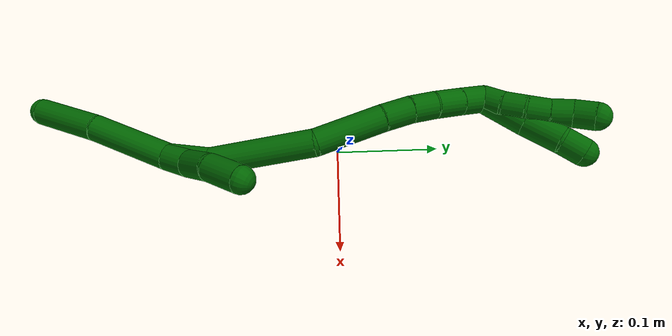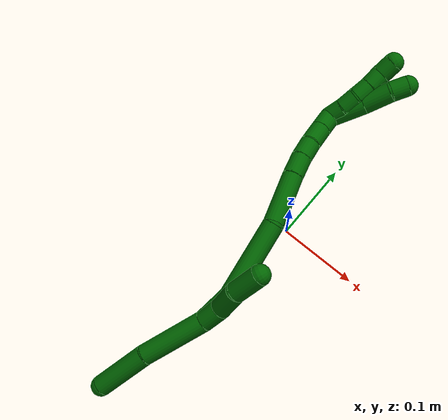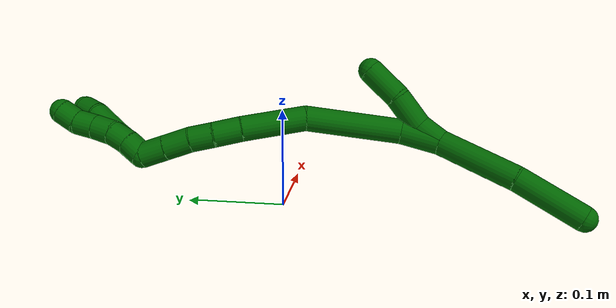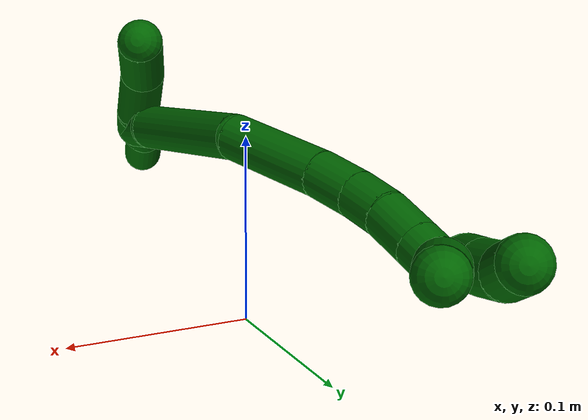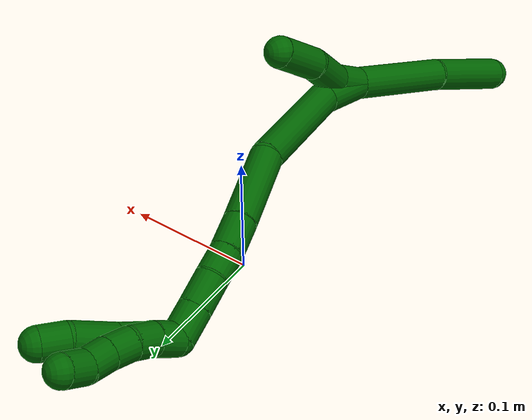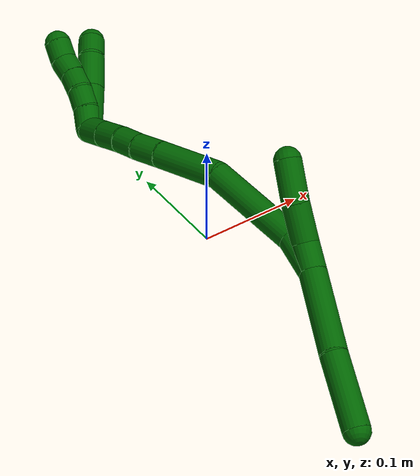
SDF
<sdf version="1.7">
 <world name="default">
  <model name="6">
   <static>0</static>
   <link name="6">
    <collision name="collision-cylinder-e_1_2_8">
     <pose>0.002175 0.000346 -0.040347 -3.13301 0.053845 -2.82548</pose>
     <geometry><cylinder><radius>0.0125</radius><length>0.080815</length></cylinder></geometry>
     <surface>
      <friction><ode><mu>1.16</mu><mu2>1.16</mu2><slip1>0</slip1><slip2>0</slip2></ode></friction>
      <contact><ode><kp>1e+06</kp><kd>1</kd><max_vel>0</max_vel><min_depth>0.001</min_depth></ode></contact>
     </surface>
    </collision>
    <visual name="visual-cylinder-e_1_2_8">
     <pose>0.002175 0.000346 -0.040347 -3.13301 0.053845 -2.82548</pose>
     <geometry><cylinder><radius>0.0125</radius><length>0.080815</length></cylinder></geometry>
     <material><ambient>0 0.392157 0.003922 1</ambient></material>
    </visual>
    <collision name="collision-cylinder-e_2_8_6">
     <pose>0.009644 0.004811 -0.114631 -3.02082 0.153674 -1.8102</pose>
     <geometry><cylinder><radius>0.0125</radius><length>0.069185</length></cylinder></geometry>
     <surface>
      <friction><ode><mu>1.16</mu><mu2>1.16</mu2><slip1>0</slip1><slip2>0</slip2></ode></friction>
      <contact><ode><kp>1e+06</kp><kd>1</kd><max_vel>0</max_vel><min_depth>0.001</min_depth></ode></contact>
     </surface>
    </collision>
    <visual name="visual-cylinder-e_2_8_6">
     <pose>0.009644 0.004811 -0.114631 -3.02082 0.153674 -1.8102</pose>
     <geometry><cylinder><radius>0.0125</radius><length>0.069185</length></cylinder></geometry>
     <material><ambient>0 0.392157 0.003922 1</ambient></material>
    </visual>
    <collision name="collision-cylinder-e_1_2_9">
     <pose>-0.002316 -0.003118 0.012617 0.242301 -0.176376 -0.021528</pose>
     <geometry><cylinder><radius>0.0125</radius><length>0.026403</length></cylinder></geometry>
     <surface>
      <friction><ode><mu>1.16</mu><mu2>1.16</mu2><slip1>0</slip1><slip2>0</slip2></ode></friction>
      <contact><ode><kp>1e+06</kp><kd>1</kd><max_vel>0</max_vel><min_depth>0.001</min_depth></ode></contact>
     </surface>
    </collision>
    <visual name="visual-cylinder-e_1_2_9">
     <pose>-0.002316 -0.003118 0.012617 0.242301 -0.176376 -0.021528</pose>
     <geometry><cylinder><radius>0.0125</radius><length>0.026403</length></cylinder></geometry>
     <material><ambient>0 0.392157 0.003922 1</ambient></material>
    </visual>
    <collision name="collision-cylinder-e_2_9_10">
     <pose>-0.009784 -0.015502 0.039486 0.576452 -0.294215 -0.087808</pose>
     <geometry><cylinder><radius>0.0125</radius><length>0.035524</length></cylinder></geometry>
     <surface>
      <friction><ode><mu>1.16</mu><mu2>1.16</mu2><slip1>0</slip1><slip2>0</slip2></ode></friction>
      <contact><ode><kp>1e+06</kp><kd>1</kd><max_vel>0</max_vel><min_depth>0.001</min_depth></ode></contact>
     </surface>
    </collision>
    <visual name="visual-cylinder-e_2_9_10">
     <pose>-0.009784 -0.015502 0.039486 0.576452 -0.294215 -0.087808</pose>
     <geometry><cylinder><radius>0.0125</radius><length>0.035524</length></cylinder></geometry>
     <material><ambient>0 0.392157 0.003922 1</ambient></material>
    </visual>
    <collision name="collision-cylinder-e_3_10_5">
     <pose>-0.017806 -0.031543 0.071295 0.368311 -0.15141 -0.028255</pose>
     <geometry><cylinder><radius>0.0125</radius><length>0.038072</length></cylinder></geometry>
     <surface>
      <friction><ode><mu>1.16</mu><mu2>1.16</mu2><slip1>0</slip1><slip2>0</slip2></ode></friction>
      <contact><ode><kp>1e+06</kp><kd>1</kd><max_vel>0</max_vel><min_depth>0.001</min_depth></ode></contact>
     </surface>
    </collision>
    <visual name="visual-cylinder-e_3_10_5">
     <pose>-0.017806 -0.031543 0.071295 0.368311 -0.15141 -0.028255</pose>
     <geometry><cylinder><radius>0.0125</radius><length>0.038072</length></cylinder></geometry>
     <material><ambient>0 0.392157 0.003922 1</ambient></material>
    </visual>
    <collision name="collision-cylinder-e_1_2_11">
     <pose>-0.005524 0.00263 0.019118 -0.136707 -0.278782 0.01921</pose>
     <geometry><cylinder><radius>0.0125</radius><length>0.040146</length></cylinder></geometry>
     <surface>
      <friction><ode><mu>1.16</mu><mu2>1.16</mu2><slip1>0</slip1><slip2>0</slip2></ode></friction>
      <contact><ode><kp>1e+06</kp><kd>1</kd><max_vel>0</max_vel><min_depth>0.001</min_depth></ode></contact>
     </surface>
    </collision>
    <visual name="visual-cylinder-e_1_2_11">
     <pose>-0.005524 0.00263 0.019118 -0.136707 -0.278782 0.01921</pose>
     <geometry><cylinder><radius>0.0125</radius><length>0.040146</length></cylinder></geometry>
     <material><ambient>0 0.392157 0.003922 1</ambient></material>
    </visual>
    <collision name="collision-cylinder-e_2_11_12">
     <pose>-0.035375 0.01606 0.077716 -0.267028 -0.536257 0.07377</pose>
     <geometry><cylinder><radius>0.0125</radius><length>0.095229</length></cylinder></geometry>
     <surface>
      <friction><ode><mu>1.16</mu><mu2>1.16</mu2><slip1>0</slip1><slip2>0</slip2></ode></friction>
      <contact><ode><kp>1e+06</kp><kd>1</kd><max_vel>0</max_vel><min_depth>0.001</min_depth></ode></contact>
     </surface>
    </collision>
    <visual name="visual-cylinder-e_2_11_12">
     <pose>-0.035375 0.01606 0.077716 -0.267028 -0.536257 0.07377</pose>
     <geometry><cylinder><radius>0.0125</radius><length>0.095229</length></cylinder></geometry>
     <material><ambient>0 0.392157 0.003922 1</ambient></material>
    </visual>
    <collision name="collision-cylinder-e_3_12_13">
     <pose>-0.078757 0.042089 0.137957 -0.632883 -0.637117 0.215142</pose>
     <geometry><cylinder><radius>0.0125</radius><length>0.064063</length></cylinder></geometry>
     <surface>
      <friction><ode><mu>1.16</mu><mu2>1.16</mu2><slip1>0</slip1><slip2>0</slip2></ode></friction>
      <contact><ode><kp>1e+06</kp><kd>1</kd><max_vel>0</max_vel><min_depth>0.001</min_depth></ode></contact>
     </surface>
    </collision>
    <visual name="visual-cylinder-e_3_12_13">
     <pose>-0.078757 0.042089 0.137957 -0.632883 -0.637117 0.215142</pose>
     <geometry><cylinder><radius>0.0125</radius><length>0.064063</length></cylinder></geometry>
     <material><ambient>0 0.392157 0.003922 1</ambient></material>
    </visual>
    <collision name="collision-cylinder-e_4_13_14">
     <pose>-0.105112 0.064464 0.167601 -0.677432 -0.569512 0.205513</pose>
     <geometry><cylinder><radius>0.0125</radius><length>0.027077</length></cylinder></geometry>
     <surface>
      <friction><ode><mu>1.16</mu><mu2>1.16</mu2><slip1>0</slip1><slip2>0</slip2></ode></friction>
      <contact><ode><kp>1e+06</kp><kd>1</kd><max_vel>0</max_vel><min_depth>0.001</min_depth></ode></contact>
     </surface>
    </collision>
    <visual name="visual-cylinder-e_4_13_14">
     <pose>-0.105112 0.064464 0.167601 -0.677432 -0.569512 0.205513</pose>
     <geometry><cylinder><radius>0.0125</radius><length>0.027077</length></cylinder></geometry>
     <material><ambient>0 0.392157 0.003922 1</ambient></material>
    </visual>
    <collision name="collision-cylinder-e_5_14_15">
     <pose>-0.11764 0.077806 0.184688 -0.646839 -0.470533 0.160349</pose>
     <geometry><cylinder><radius>0.0125</radius><length>0.023065</length></cylinder></geometry>
     <surface>
      <friction><ode><mu>1.16</mu><mu2>1.16</mu2><slip1>0</slip1><slip2>0</slip2></ode></friction>
      <contact><ode><kp>1e+06</kp><kd>1</kd><max_vel>0</max_vel><min_depth>0.001</min_depth></ode></contact>
     </surface>
    </collision>
    <visual name="visual-cylinder-e_5_14_15">
     <pose>-0.11764 0.077806 0.184688 -0.646839 -0.470533 0.160349</pose>
     <geometry><cylinder><radius>0.0125</radius><length>0.023065</length></cylinder></geometry>
     <material><ambient>0 0.392157 0.003922 1</ambient></material>
    </visual>
    <collision name="collision-cylinder-e_6_15_16">
     <pose>-0.127705 0.092254 0.201602 -0.758366 -0.383093 0.154238</pose>
     <geometry><cylinder><radius>0.0125</radius><length>0.025877</length></cylinder></geometry>
     <surface>
      <friction><ode><mu>1.16</mu><mu2>1.16</mu2><slip1>0</slip1><slip2>0</slip2></ode></friction>
      <contact><ode><kp>1e+06</kp><kd>1</kd><max_vel>0</max_vel><min_depth>0.001</min_depth></ode></contact>
     </surface>
    </collision>
    <visual name="visual-cylinder-e_6_15_16">
     <pose>-0.127705 0.092254 0.201602 -0.758366 -0.383093 0.154238</pose>
     <geometry><cylinder><radius>0.0125</radius><length>0.025877</length></cylinder></geometry>
     <material><ambient>0 0.392157 0.003922 1</ambient></material>
    </visual>
    <collision name="collision-cylinder-e_7_16_1">
     <pose>-0.136995 0.108348 0.218637 -0.755622 -0.37144 0.148859</pose>
     <geometry><cylinder><radius>0.0125</radius><length>0.024544</length></cylinder></geometry>
     <surface>
      <friction><ode><mu>1.16</mu><mu2>1.16</mu2><slip1>0</slip1><slip2>0</slip2></ode></friction>
      <contact><ode><kp>1e+06</kp><kd>1</kd><max_vel>0</max_vel><min_depth>0.001</min_depth></ode></contact>
     </surface>
    </collision>
    <visual name="visual-cylinder-e_7_16_1">
     <pose>-0.136995 0.108348 0.218637 -0.755622 -0.37144 0.148859</pose>
     <geometry><cylinder><radius>0.0125</radius><length>0.024544</length></cylinder></geometry>
     <material><ambient>0 0.392157 0.003922 1</ambient></material>
    </visual>
    <collision name="collision-cylinder-e_1_1_17">
     <pose>-0.1422 0.11394 0.236675 0.227645 -0.075088 -0.008588</pose>
     <geometry><cylinder><radius>0.0125</radius><length>0.02</length></cylinder></geometry>
     <surface>
      <friction><ode><mu>1.16</mu><mu2>1.16</mu2><slip1>0</slip1><slip2>0</slip2></ode></friction>
      <contact><ode><kp>1e+06</kp><kd>1</kd><max_vel>0</max_vel><min_depth>0.001</min_depth></ode></contact>
     </surface>
    </collision>
    <visual name="visual-cylinder-e_1_1_17">
     <pose>-0.1422 0.11394 0.236675 0.227645 -0.075088 -0.008588</pose>
     <geometry><cylinder><radius>0.0125</radius><length>0.02</length></cylinder></geometry>
     <material><ambient>0 0.392157 0.003922 1</ambient></material>
    </visual>
    <collision name="collision-cylinder-e_2_17_18">
     <pose>-0.144908 0.110764 0.256152 0.094519 -0.197089 -0.009352</pose>
     <geometry><cylinder><radius>0.0125</radius><length>0.02</length></cylinder></geometry>
     <surface>
      <friction><ode><mu>1.16</mu><mu2>1.16</mu2><slip1>0</slip1><slip2>0</slip2></ode></friction>
      <contact><ode><kp>1e+06</kp><kd>1</kd><max_vel>0</max_vel><min_depth>0.001</min_depth></ode></contact>
     </surface>
    </collision>
    <visual name="visual-cylinder-e_2_17_18">
     <pose>-0.144908 0.110764 0.256152 0.094519 -0.197089 -0.009352</pose>
     <geometry><cylinder><radius>0.0125</radius><length>0.02</length></cylinder></geometry>
     <material><ambient>0 0.392157 0.003922 1</ambient></material>
    </visual>
    <collision name="collision-cylinder-e_3_18_19">
     <pose>-0.148884 0.111019 0.275638 -0.120903 -0.203173 0.012339</pose>
     <geometry><cylinder><radius>0.0125</radius><length>0.02</length></cylinder></geometry>
     <surface>
      <friction><ode><mu>1.16</mu><mu2>1.16</mu2><slip1>0</slip1><slip2>0</slip2></ode></friction>
      <contact><ode><kp>1e+06</kp><kd>1</kd><max_vel>0</max_vel><min_depth>0.001</min_depth></ode></contact>
     </surface>
    </collision>
    <visual name="visual-cylinder-e_3_18_19">
     <pose>-0.148884 0.111019 0.275638 -0.120903 -0.203173 0.012339</pose>
     <geometry><cylinder><radius>0.0125</radius><length>0.02</length></cylinder></geometry>
     <material><ambient>0 0.392157 0.003922 1</ambient></material>
    </visual>
    <collision name="collision-cylinder-e_4_19_20">
     <pose>-0.154155 0.113593 0.294713 -0.147814 -0.331343 0.024759</pose>
     <geometry><cylinder><radius>0.0125</radius><length>0.02</length></cylinder></geometry>
     <surface>
      <friction><ode><mu>1.16</mu><mu2>1.16</mu2><slip1>0</slip1><slip2>0</slip2></ode></friction>
      <contact><ode><kp>1e+06</kp><kd>1</kd><max_vel>0</max_vel><min_depth>0.001</min_depth></ode></contact>
     </surface>
    </collision>
    <visual name="visual-cylinder-e_4_19_20">
     <pose>-0.154155 0.113593 0.294713 -0.147814 -0.331343 0.024759</pose>
     <geometry><cylinder><radius>0.0125</radius><length>0.02</length></cylinder></geometry>
     <material><ambient>0 0.392157 0.003922 1</ambient></material>
    </visual>
    <collision name="collision-cylinder-e_5_20_4">
     <pose>-0.159817 0.113473 0.313653 0.156468 -0.24326 -0.019164</pose>
     <geometry><cylinder><radius>0.0125</radius><length>0.02</length></cylinder></geometry>
     <surface>
      <friction><ode><mu>1.16</mu><mu2>1.16</mu2><slip1>0</slip1><slip2>0</slip2></ode></friction>
      <contact><ode><kp>1e+06</kp><kd>1</kd><max_vel>0</max_vel><min_depth>0.001</min_depth></ode></contact>
     </surface>
    </collision>
    <visual name="visual-cylinder-e_5_20_4">
     <pose>-0.159817 0.113473 0.313653 0.156468 -0.24326 -0.019164</pose>
     <geometry><cylinder><radius>0.0125</radius><length>0.02</length></cylinder></geometry>
     <material><ambient>0 0.392157 0.003922 1</ambient></material>
    </visual>
    <collision name="collision-cylinder-e_1_1_21">
     <pose>-0.138482 0.114323 0.248797 0.085274 0.134582 0.00575</pose>
     <geometry><cylinder><radius>0.0125</radius><length>0.044232</length></cylinder></geometry>
     <surface>
      <friction><ode><mu>1.16</mu><mu2>1.16</mu2><slip1>0</slip1><slip2>0</slip2></ode></friction>
      <contact><ode><kp>1e+06</kp><kd>1</kd><max_vel>0</max_vel><min_depth>0.001</min_depth></ode></contact>
     </surface>
    </collision>
    <visual name="visual-cylinder-e_1_1_21">
     <pose>-0.138482 0.114323 0.248797 0.085274 0.134582 0.00575</pose>
     <geometry><cylinder><radius>0.0125</radius><length>0.044232</length></cylinder></geometry>
     <material><ambient>0 0.392157 0.003922 1</ambient></material>
    </visual>
    <collision name="collision-cylinder-e_2_21_22">
     <pose>-0.134174 0.109543 0.28773 0.168791 0.077143 0.006529</pose>
     <geometry><cylinder><radius>0.0125</radius><length>0.034789</length></cylinder></geometry>
     <surface>
      <friction><ode><mu>1.16</mu><mu2>1.16</mu2><slip1>0</slip1><slip2>0</slip2></ode></friction>
      <contact><ode><kp>1e+06</kp><kd>1</kd><max_vel>0</max_vel><min_depth>0.001</min_depth></ode></contact>
     </surface>
    </collision>
    <visual name="visual-cylinder-e_2_21_22">
     <pose>-0.134174 0.109543 0.28773 0.168791 0.077143 0.006529</pose>
     <geometry><cylinder><radius>0.0125</radius><length>0.034789</length></cylinder></geometry>
     <material><ambient>0 0.392157 0.003922 1</ambient></material>
    </visual>
    <collision name="collision-cylinder-e_3_22_3">
     <pose>-0.131278 0.107423 0.315169 -0.076543 0.148845 -0.00571</pose>
     <geometry><cylinder><radius>0.0125</radius><length>0.020979</length></cylinder></geometry>
     <surface>
      <friction><ode><mu>1.16</mu><mu2>1.16</mu2><slip1>0</slip1><slip2>0</slip2></ode></friction>
      <contact><ode><kp>1e+06</kp><kd>1</kd><max_vel>0</max_vel><min_depth>0.001</min_depth></ode></contact>
     </surface>
    </collision>
    <visual name="visual-cylinder-e_3_22_3">
     <pose>-0.131278 0.107423 0.315169 -0.076543 0.148845 -0.00571</pose>
     <geometry><cylinder><radius>0.0125</radius><length>0.020979</length></cylinder></geometry>
     <material><ambient>0 0.392157 0.003922 1</ambient></material>
    </visual>
    <collision name="collision-sphere-3">
     <pose>-0.129723 0.108216 0.325512 0 -0 0</pose>
     <geometry><sphere><radius>0.0125</radius></sphere></geometry>
     <surface>
      <friction><ode><mu>1.16</mu><mu2>1.16</mu2><slip1>0</slip1><slip2>0</slip2></ode></friction>
      <contact><ode><kp>1e+06</kp><kd>1</kd><max_vel>0</max_vel><min_depth>0.001</min_depth></ode></contact>
     </surface>
    </collision>
    <visual name="visual-sphere-3">
     <pose>-0.129723 0.108216 0.325512 0 -0 0</pose>
     <geometry><sphere><radius>0.0125</radius></sphere></geometry>
     <material><ambient>0 0.392157 0.003922 1</ambient></material>
    </visual>
    <collision name="collision-sphere-22">
     <pose>-0.132834 0.10663 0.304826 0 -0 0</pose>
     <geometry><sphere><radius>0.0125</radius></sphere></geometry>
     <surface>
      <friction><ode><mu>1.16</mu><mu2>1.16</mu2><slip1>0</slip1><slip2>0</slip2></ode></friction>
      <contact><ode><kp>1e+06</kp><kd>1</kd><max_vel>0</max_vel><min_depth>0.001</min_depth></ode></contact>
     </surface>
    </collision>
    <visual name="visual-sphere-22">
     <pose>-0.132834 0.10663 0.304826 0 -0 0</pose>
     <geometry><sphere><radius>0.0125</radius></sphere></geometry>
     <material><ambient>0 0.392157 0.003922 1</ambient></material>
    </visual>
    <collision name="collision-sphere-21">
     <pose>-0.135515 0.112457 0.270634 0 -0 0</pose>
     <geometry><sphere><radius>0.0125</radius></sphere></geometry>
     <surface>
      <friction><ode><mu>1.16</mu><mu2>1.16</mu2><slip1>0</slip1><slip2>0</slip2></ode></friction>
      <contact><ode><kp>1e+06</kp><kd>1</kd><max_vel>0</max_vel><min_depth>0.001</min_depth></ode></contact>
     </surface>
    </collision>
    <visual name="visual-sphere-21">
     <pose>-0.135515 0.112457 0.270634 0 -0 0</pose>
     <geometry><sphere><radius>0.0125</radius></sphere></geometry>
     <material><ambient>0 0.392157 0.003922 1</ambient></material>
    </visual>
    <collision name="collision-sphere-4">
     <pose>-0.162226 0.111961 0.32324 0 -0 0</pose>
     <geometry><sphere><radius>0.0125</radius></sphere></geometry>
     <surface>
      <friction><ode><mu>1.16</mu><mu2>1.16</mu2><slip1>0</slip1><slip2>0</slip2></ode></friction>
      <contact><ode><kp>1e+06</kp><kd>1</kd><max_vel>0</max_vel><min_depth>0.001</min_depth></ode></contact>
     </surface>
    </collision>
    <visual name="visual-sphere-4">
     <pose>-0.162226 0.111961 0.32324 0 -0 0</pose>
     <geometry><sphere><radius>0.0125</radius></sphere></geometry>
     <material><ambient>0 0.392157 0.003922 1</ambient></material>
    </visual>
    <collision name="collision-sphere-20">
     <pose>-0.157408 0.114986 0.304066 0 -0 0</pose>
     <geometry><sphere><radius>0.0125</radius></sphere></geometry>
     <surface>
      <friction><ode><mu>1.16</mu><mu2>1.16</mu2><slip1>0</slip1><slip2>0</slip2></ode></friction>
      <contact><ode><kp>1e+06</kp><kd>1</kd><max_vel>0</max_vel><min_depth>0.001</min_depth></ode></contact>
     </surface>
    </collision>
    <visual name="visual-sphere-20">
     <pose>-0.157408 0.114986 0.304066 0 -0 0</pose>
     <geometry><sphere><radius>0.0125</radius></sphere></geometry>
     <material><ambient>0 0.392157 0.003922 1</ambient></material>
    </visual>
    <collision name="collision-sphere-5">
     <pose>-0.020677 -0.038318 0.088851 0 -0 0</pose>
     <geometry><sphere><radius>0.0125</radius></sphere></geometry>
     <surface>
      <friction><ode><mu>1.16</mu><mu2>1.16</mu2><slip1>0</slip1><slip2>0</slip2></ode></friction>
      <contact><ode><kp>1e+06</kp><kd>1</kd><max_vel>0</max_vel><min_depth>0.001</min_depth></ode></contact>
     </surface>
    </collision>
    <visual name="visual-sphere-5">
     <pose>-0.020677 -0.038318 0.088851 0 -0 0</pose>
     <geometry><sphere><radius>0.0125</radius></sphere></geometry>
     <material><ambient>0 0.392157 0.003922 1</ambient></material>
    </visual>
    <collision name="collision-sphere-10">
     <pose>-0.014934 -0.024767 0.053738 0 -0 0</pose>
     <geometry><sphere><radius>0.0125</radius></sphere></geometry>
     <surface>
      <friction><ode><mu>1.16</mu><mu2>1.16</mu2><slip1>0</slip1><slip2>0</slip2></ode></friction>
      <contact><ode><kp>1e+06</kp><kd>1</kd><max_vel>0</max_vel><min_depth>0.001</min_depth></ode></contact>
     </surface>
    </collision>
    <visual name="visual-sphere-10">
     <pose>-0.014934 -0.024767 0.053738 0 -0 0</pose>
     <geometry><sphere><radius>0.0125</radius></sphere></geometry>
     <material><ambient>0 0.392157 0.003922 1</ambient></material>
    </visual>
    <collision name="collision-sphere-6">
     <pose>0.01494 0.00893 -0.148567 0 -0 0</pose>
     <geometry><sphere><radius>0.0125</radius></sphere></geometry>
     <surface>
      <friction><ode><mu>1.16</mu><mu2>1.16</mu2><slip1>0</slip1><slip2>0</slip2></ode></friction>
      <contact><ode><kp>1e+06</kp><kd>1</kd><max_vel>0</max_vel><min_depth>0.001</min_depth></ode></contact>
     </surface>
    </collision>
    <visual name="visual-sphere-6">
     <pose>0.01494 0.00893 -0.148567 0 -0 0</pose>
     <geometry><sphere><radius>0.0125</radius></sphere></geometry>
     <material><ambient>0 0.392157 0.003922 1</ambient></material>
    </visual>
    <collision name="collision-sphere-9">
     <pose>-0.004633 -0.006237 0.025234 0 -0 0</pose>
     <geometry><sphere><radius>0.0125</radius></sphere></geometry>
     <surface>
      <friction><ode><mu>1.16</mu><mu2>1.16</mu2><slip1>0</slip1><slip2>0</slip2></ode></friction>
      <contact><ode><kp>1e+06</kp><kd>1</kd><max_vel>0</max_vel><min_depth>0.001</min_depth></ode></contact>
     </surface>
    </collision>
    <visual name="visual-sphere-9">
     <pose>-0.004633 -0.006237 0.025234 0 -0 0</pose>
     <geometry><sphere><radius>0.0125</radius></sphere></geometry>
     <material><ambient>0 0.392157 0.003922 1</ambient></material>
    </visual>
    <collision name="collision-sphere-2">
     <geometry><sphere><radius>0.0125</radius></sphere></geometry>
     <surface>
      <friction><ode><mu>1.16</mu><mu2>1.16</mu2><slip1>0</slip1><slip2>0</slip2></ode></friction>
      <contact><ode><kp>1e+06</kp><kd>1</kd><max_vel>0</max_vel><min_depth>0.001</min_depth></ode></contact>
     </surface>
    </collision>
    <visual name="visual-sphere-2">
     <geometry><sphere><radius>0.0125</radius></sphere></geometry>
     <material><ambient>0 0.392157 0.003922 1</ambient></material>
    </visual>
    <collision name="collision-sphere-19">
     <pose>-0.150902 0.112201 0.28536 0 -0 0</pose>
     <geometry><sphere><radius>0.0125</radius></sphere></geometry>
     <surface>
      <friction><ode><mu>1.16</mu><mu2>1.16</mu2><slip1>0</slip1><slip2>0</slip2></ode></friction>
      <contact><ode><kp>1e+06</kp><kd>1</kd><max_vel>0</max_vel><min_depth>0.001</min_depth></ode></contact>
     </surface>
    </collision>
    <visual name="visual-sphere-19">
     <pose>-0.150902 0.112201 0.28536 0 -0 0</pose>
     <geometry><sphere><radius>0.0125</radius></sphere></geometry>
     <material><ambient>0 0.392157 0.003922 1</ambient></material>
    </visual>
    <collision name="collision-sphere-8">
     <pose>0.004349 0.000693 -0.080695 0 -0 0</pose>
     <geometry><sphere><radius>0.0125</radius></sphere></geometry>
     <surface>
      <friction><ode><mu>1.16</mu><mu2>1.16</mu2><slip1>0</slip1><slip2>0</slip2></ode></friction>
      <contact><ode><kp>1e+06</kp><kd>1</kd><max_vel>0</max_vel><min_depth>0.001</min_depth></ode></contact>
     </surface>
    </collision>
    <visual name="visual-sphere-8">
     <pose>0.004349 0.000693 -0.080695 0 -0 0</pose>
     <geometry><sphere><radius>0.0125</radius></sphere></geometry>
     <material><ambient>0 0.392157 0.003922 1</ambient></material>
    </visual>
    <collision name="collision-sphere-11">
     <pose>-0.011048 0.00526 0.038236 0 -0 0</pose>
     <geometry><sphere><radius>0.0125</radius></sphere></geometry>
     <surface>
      <friction><ode><mu>1.16</mu><mu2>1.16</mu2><slip1>0</slip1><slip2>0</slip2></ode></friction>
      <contact><ode><kp>1e+06</kp><kd>1</kd><max_vel>0</max_vel><min_depth>0.001</min_depth></ode></contact>
     </surface>
    </collision>
    <visual name="visual-sphere-11">
     <pose>-0.011048 0.00526 0.038236 0 -0 0</pose>
     <geometry><sphere><radius>0.0125</radius></sphere></geometry>
     <material><ambient>0 0.392157 0.003922 1</ambient></material>
    </visual>
    <collision name="collision-sphere-12">
     <pose>-0.059702 0.02686 0.117196 0 -0 0</pose>
     <geometry><sphere><radius>0.0125</radius></sphere></geometry>
     <surface>
      <friction><ode><mu>1.16</mu><mu2>1.16</mu2><slip1>0</slip1><slip2>0</slip2></ode></friction>
      <contact><ode><kp>1e+06</kp><kd>1</kd><max_vel>0</max_vel><min_depth>0.001</min_depth></ode></contact>
     </surface>
    </collision>
    <visual name="visual-sphere-12">
     <pose>-0.059702 0.02686 0.117196 0 -0 0</pose>
     <geometry><sphere><radius>0.0125</radius></sphere></geometry>
     <material><ambient>0 0.392157 0.003922 1</ambient></material>
    </visual>
    <collision name="collision-sphere-13">
     <pose>-0.097812 0.057318 0.158717 0 -0 0</pose>
     <geometry><sphere><radius>0.0125</radius></sphere></geometry>
     <surface>
      <friction><ode><mu>1.16</mu><mu2>1.16</mu2><slip1>0</slip1><slip2>0</slip2></ode></friction>
      <contact><ode><kp>1e+06</kp><kd>1</kd><max_vel>0</max_vel><min_depth>0.001</min_depth></ode></contact>
     </surface>
    </collision>
    <visual name="visual-sphere-13">
     <pose>-0.097812 0.057318 0.158717 0 -0 0</pose>
     <geometry><sphere><radius>0.0125</radius></sphere></geometry>
     <material><ambient>0 0.392157 0.003922 1</ambient></material>
    </visual>
    <collision name="collision-sphere-14">
     <pose>-0.112412 0.071611 0.176485 0 -0 0</pose>
     <geometry><sphere><radius>0.0125</radius></sphere></geometry>
     <surface>
      <friction><ode><mu>1.16</mu><mu2>1.16</mu2><slip1>0</slip1><slip2>0</slip2></ode></friction>
      <contact><ode><kp>1e+06</kp><kd>1</kd><max_vel>0</max_vel><min_depth>0.001</min_depth></ode></contact>
     </surface>
    </collision>
    <visual name="visual-sphere-14">
     <pose>-0.112412 0.071611 0.176485 0 -0 0</pose>
     <geometry><sphere><radius>0.0125</radius></sphere></geometry>
     <material><ambient>0 0.392157 0.003922 1</ambient></material>
    </visual>
    <collision name="collision-sphere-15">
     <pose>-0.122869 0.084 0.19289 0 -0 0</pose>
     <geometry><sphere><radius>0.0125</radius></sphere></geometry>
     <surface>
      <friction><ode><mu>1.16</mu><mu2>1.16</mu2><slip1>0</slip1><slip2>0</slip2></ode></friction>
      <contact><ode><kp>1e+06</kp><kd>1</kd><max_vel>0</max_vel><min_depth>0.001</min_depth></ode></contact>
     </surface>
    </collision>
    <visual name="visual-sphere-15">
     <pose>-0.122869 0.084 0.19289 0 -0 0</pose>
     <geometry><sphere><radius>0.0125</radius></sphere></geometry>
     <material><ambient>0 0.392157 0.003922 1</ambient></material>
    </visual>
    <collision name="collision-sphere-16">
     <pose>-0.132541 0.100507 0.210314 0 -0 0</pose>
     <geometry><sphere><radius>0.0125</radius></sphere></geometry>
     <surface>
      <friction><ode><mu>1.16</mu><mu2>1.16</mu2><slip1>0</slip1><slip2>0</slip2></ode></friction>
      <contact><ode><kp>1e+06</kp><kd>1</kd><max_vel>0</max_vel><min_depth>0.001</min_depth></ode></contact>
     </surface>
    </collision>
    <visual name="visual-sphere-16">
     <pose>-0.132541 0.100507 0.210314 0 -0 0</pose>
     <geometry><sphere><radius>0.0125</radius></sphere></geometry>
     <material><ambient>0 0.392157 0.003922 1</ambient></material>
    </visual>
    <collision name="collision-sphere-1">
     <pose>-0.14145 0.11619 0.22696 0 -0 0</pose>
     <geometry><sphere><radius>0.0125</radius></sphere></geometry>
     <surface>
      <friction><ode><mu>1.16</mu><mu2>1.16</mu2><slip1>0</slip1><slip2>0</slip2></ode></friction>
      <contact><ode><kp>1e+06</kp><kd>1</kd><max_vel>0</max_vel><min_depth>0.001</min_depth></ode></contact>
     </surface>
    </collision>
    <visual name="visual-sphere-1">
     <pose>-0.14145 0.11619 0.22696 0 -0 0</pose>
     <geometry><sphere><radius>0.0125</radius></sphere></geometry>
     <material><ambient>0 0.392157 0.003922 1</ambient></material>
    </visual>
    <collision name="collision-sphere-18">
     <pose>-0.146866 0.109838 0.265915 0 -0 0</pose>
     <geometry><sphere><radius>0.0125</radius></sphere></geometry>
     <surface>
      <friction><ode><mu>1.16</mu><mu2>1.16</mu2><slip1>0</slip1><slip2>0</slip2></ode></friction>
      <contact><ode><kp>1e+06</kp><kd>1</kd><max_vel>0</max_vel><min_depth>0.001</min_depth></ode></contact>
     </surface>
    </collision>
    <visual name="visual-sphere-18">
     <pose>-0.146866 0.109838 0.265915 0 -0 0</pose>
     <geometry><sphere><radius>0.0125</radius></sphere></geometry>
     <material><ambient>0 0.392157 0.003922 1</ambient></material>
    </visual>
    <collision name="collision-sphere-17">
     <pose>-0.14295 0.111689 0.24639 0 -0 0</pose>
     <geometry><sphere><radius>0.0125</radius></sphere></geometry>
     <surface>
      <friction><ode><mu>1.16</mu><mu2>1.16</mu2><slip1>0</slip1><slip2>0</slip2></ode></friction>
      <contact><ode><kp>1e+06</kp><kd>1</kd><max_vel>0</max_vel><min_depth>0.001</min_depth></ode></contact>
     </surface>
    </collision>
    <visual name="visual-sphere-17">
     <pose>-0.14295 0.111689 0.24639 0 -0 0</pose>
     <geometry><sphere><radius>0.0125</radius></sphere></geometry>
     <material><ambient>0 0.392157 0.003922 1</ambient></material>
    </visual>
    <inertial>
     <pose>-0.066203 0.045096 0.113079 0 -0 0</pose>
     <mass>0.75</mass>
     <inertia><ixx>3.7e-05</ixx><ixy>0</ixy><ixz>0</ixz><iyy>0.000168</iyy><iyz>0</iyz><izz>5.1e-05</izz></inertia>
    </inertial>
   </link>
   <pose>0.002585 -0.155996 0.072183 -1.28275 0.244576 -0.38202</pose>
  </model>
 </world>
</sdf>
